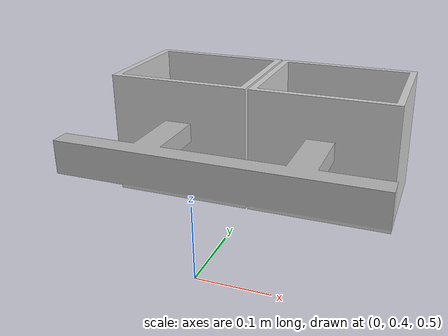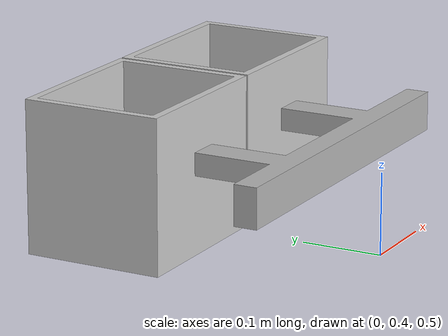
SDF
<?xml version="1.0"?>
<sdf version="1.4">
    <model name="box_of_cork">
        <link name="belt_visual">
            <visual name="visual">
                <geometry>
                    <mesh>
                        <scale>1 1 1</scale>
                        <uri>model://box_of_cork/meshes/box_of_cork.dae</uri>
                    </mesh>
                </geometry>
            </visual>
            <collision name="collision">
                <geometry>
                    <mesh>
                        <scale>1 1 1</scale>
                        <uri>model://box_of_cork/meshes/box_of_cork.dae</uri>
                    </mesh>
                </geometry>
                <pose>0.0 0.0 0 0.0 0.0 0.0</pose>
            </collision>
            <static>true</static>
        </link>
    </model>
</sdf>
